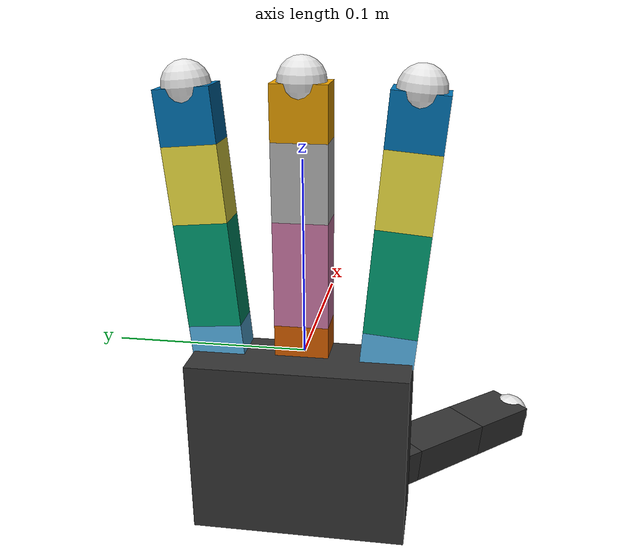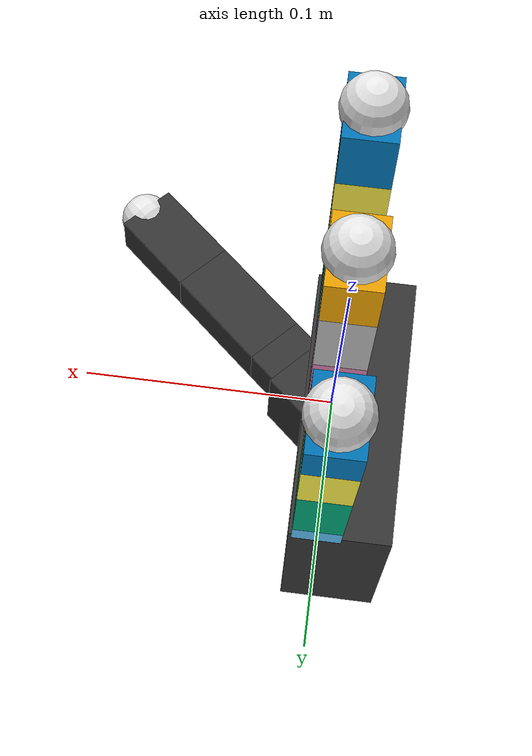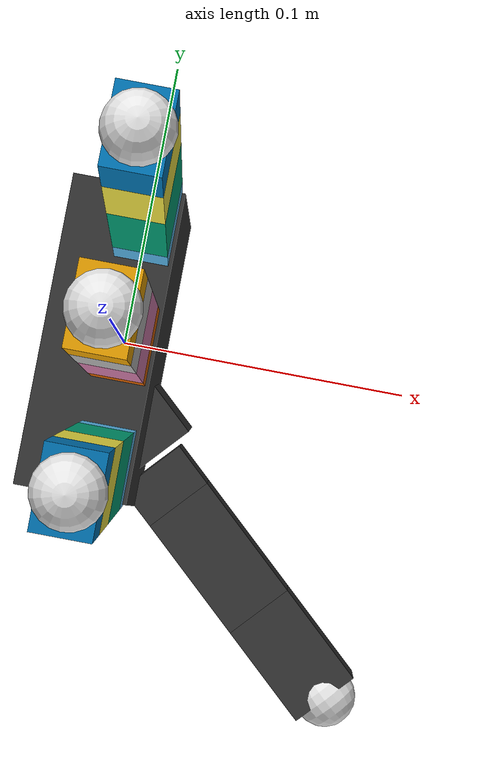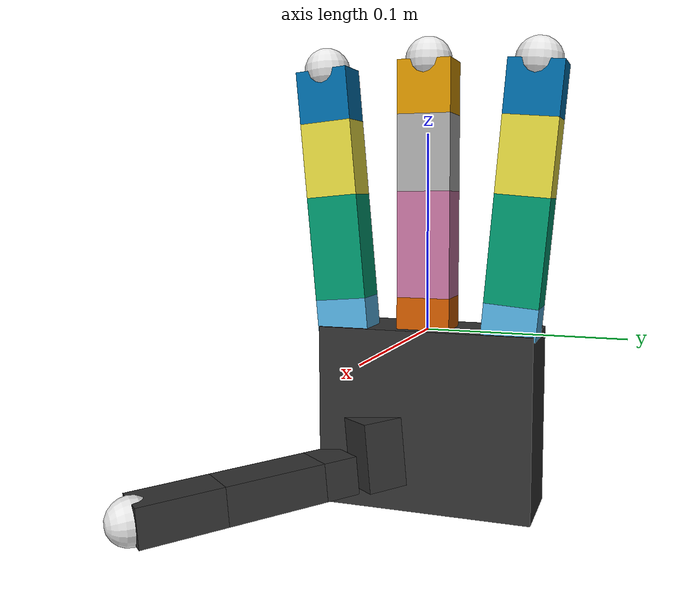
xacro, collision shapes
<?xml version="1.0"?>
<robot xmlns:xacro="http://wiki.ros.org/xacro" name="allegro_hand_left">
    <xacro:arg name="prefix" default=""/>

    <xacro:arg name="port" default="" />
    <xacro:arg name="hand_id" default="0" />
    <xacro:arg name="use_mock_hardware" default="false"/>

    <xacro:arg name="position_filtering" default="1.0" />
    <xacro:arg name="velocity_filtering" default="1.0" />

    <xacro:include filename="$(find allegro_hand_description)/urdf/allegro_hand_description_left.xacro"/>
    <xacro:include filename="$(find allegro_hand_description)/urdf/allegro_fingertip.xacro"/>

    <xacro:include filename="$(find allegro_hand_description)/ros2_control/allegro.ros2_control.xacro"/>

    <link name="world"></link>

    <xacro:allegro_hand_left prefix="$(arg prefix)" parent="world">
        <origin xyz="0 0 0" rpy="0 0 0"/>
    </xacro:allegro_hand_left>

    <xacro:allegro_finger_tip prefix="$(arg prefix)" finger_num="0"/>
    <xacro:allegro_finger_tip prefix="$(arg prefix)" finger_num="1"/>
    <xacro:allegro_finger_tip prefix="$(arg prefix)" finger_num="2"/>
    <xacro:allegro_thumb_tip prefix="$(arg prefix)" finger_num="3"/>

    <!-- ros2_control description -->
    <xacro:allegro_ros2_control
        name="allegro_hand_left"
        prefix="$(arg prefix)"
        port="$(arg port)"
        hand_id="$(arg hand_id)"
        use_mock_hardware="$(arg use_mock_hardware)"
        position_filtering="$(arg position_filtering)"
        velocity_filtering="$(arg velocity_filtering)"
        />

</robot>

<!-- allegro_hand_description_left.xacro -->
<robot xmlns:xacro="http://www.ros.org/wiki/xacro" name="allegro_hand_left">
    <xacro:include filename="allegro_common.xacro" />

    <!-- THUMB MACRO -->
    <xacro:macro name="thumb_left"
                 params="prefix finger_num offset_origin_x offset_origin_y offset_origin_z finger_angle_r finger_angle_p finger_angle_y">

        <!-- [LINK 12] -->
        <link name="${prefix}link_${finger_num*4+0}">
            <visual>
                <geometry>
                    <mesh filename="package://allegro_hand_description/meshes/link_12_0_left.STL"/>
                </geometry>
                <material name="black">
                    <color rgba=".2 .2 .2 1"/>
                </material>
                <origin rpy="${180*DEG2RAD} 0 0" xyz="0 0 0"/>
            </visual>

            <collision>
                <geometry>
                    <box size="${link0_t_x} ${link0_t_y} ${link0_t_z}"/>
                </geometry>
                <origin rpy="0 0 0" xyz="${-0.0358/2+0.0} ${-.018/2} ${.029/2}"/>
            </collision>

            <inertial>
              <mass value="0.0176" />
              <origin xyz="0 0 0" rpy="0 0 0"/>
              <inertia ixx="1.89273333333e-4" ixy="0" ixz="0"
                       iyy="1.43008213333e-4" iyz="0"
                       izz="1.89273333333e-4" />
            </inertial>
        </link>

        <joint name="${prefix}joint_${finger_num*4+0}" type="revolute">
            <axis xyz="+1 0 0"/>
            <limit effort="${torque_limit}" velocity="${velocity_limit}"
                   lower="${limit_0_t_low-joint_safety_margin}"
                   upper="${limit_0_t_up-joint_safety_margin}"/>
            <parent link="${prefix}palm_link"/>
            <child link="${prefix}link_${finger_num*4+0}"/>
            <origin rpy="${finger_angle_r} ${finger_angle_p} ${finger_angle_y}"
                    xyz="${offset_origin_x} ${offset_origin_y} ${offset_origin_z}"/>
            <dynamics damping="3" friction="10"/>
        </joint>

        <!-- [LINK 13] -->
        <link name="${prefix}link_${finger_num*4+1}">
            <visual>
                <geometry>
                    <mesh filename="package://allegro_hand_description/meshes/link_13_0.STL"/>
                </geometry>
                <material name="black">
                    <color rgba=".2 .2 .2 1"/>
                </material>
            </visual>

            <collision>
                <geometry>
                    <box size="${links_x} ${links_y} ${link1_t_z}"/>
                </geometry>
                <origin rpy="0 0 0" xyz="0 0 ${link1_t_z/2}"/>
            </collision>

            <inertial>
              <mass value="0.0119" />
              <origin xyz="0 0 0" rpy="0 0 0"/>
              <inertia ixx="4.24250866667e-4" ixy="0" ixz="0"
                       iyy="4.52362633333e-4" iyz="0"
                       izz="4.24250866667e-4" />
            </inertial>
        </link>

        <joint name="${prefix}joint_${finger_num*4+1}" type="revolute">
            <axis xyz="0 0 -1"/>
            <limit effort="${torque_limit}" velocity="${velocity_limit}"
                   lower="${limit_1_t_low+joint_safety_margin}"
                   upper="${limit_1_t_up-joint_safety_margin}"/>
            <parent link="${prefix}link_${finger_num*4+0}"/>
            <child link="${prefix}link_${finger_num*4+1}"/>
            <origin xyz="-0.027 -0.005 0.0399"/>
            <dynamics damping="3" friction="5"/>
        </joint>

        <!-- [LINK 14] -->
        <link name="${prefix}link_${finger_num*4+2}">
            <visual>
                <geometry>
                    <mesh filename="package://allegro_hand_description/meshes/link_14_0.STL"/>
                </geometry>
                <material name="black">
                </material>
            </visual>

            <collision>
                <geometry>
                    <box size="${links_x} ${links_y} ${link2_t_z}"/>
                </geometry>
                <origin rpy="0 0 0" xyz="0 0 ${link2_t_z/2}"/>
            </collision>

            <inertial>
              <mass value="0.038" />
              <origin xyz="0 0 0" rpy="0 0 0"/>
              <inertia ixx="4.30439933333e-4" ixy="0" ixz="0"
                       iyy="1.44451933333e-4" iyz="0"
                       izz="4.30439933333e-4" />
            </inertial>
        </link>

        <joint name="${prefix}joint_${finger_num*4+2}" type="revolute">
            <axis xyz="0 1 0"/>
            <limit effort="${torque_limit}" velocity="${velocity_limit}"
                   lower="${limit_2_t_low+joint_safety_margin}"
                   upper="${limit_2_t_up-joint_safety_margin}"/>
            <parent link="${prefix}link_${finger_num*4+1}"/>
            <child link="${prefix}link_${finger_num*4+2}"/>
            <origin xyz="0 0 ${link1_t_z}"/>
            <dynamics damping="3" friction="10"/>
        </joint>

        <!-- [LINK 15] -->
        <link name="${prefix}link_${finger_num*4+3}">
            <visual>
                <geometry>
                    <mesh filename="package://allegro_hand_description/meshes/link_15_0.STL"/>
                </geometry>
                <material name="black">
                </material>
            </visual>

            <collision>
                <geometry>
                    <box size="${links_x} ${links_y} ${link3_t_z-fingerTip_r}"/>
                </geometry>
                <origin rpy="0 0 0" xyz="0 0 ${(link3_t_z-fingerTip_r)/2}"/>
            </collision>

            <inertial>
              <mass value="0.0388" />
              <origin xyz="0 0 0" rpy="0 0 0"/>
              <inertia ixx="3.29223173333e-4" ixy="0" ixz="0"
                       iyy="1.47493026667e-4" iyz="0"
                       izz="3.29223173333e-4" />
            </inertial>
        </link>

        <joint name="${prefix}joint_${finger_num*4+3}" type="revolute">
            <axis xyz="0 1 0"/>
            <limit effort="${torque_limit}" velocity="${velocity_limit}"
                   lower="${limit_3_t_low+joint_safety_margin}"
                   upper="${limit_3_t_up-joint_safety_margin}"/>
            <parent link="${prefix}link_${finger_num*4+2}"/>
            <child link="${prefix}link_${finger_num*4+3}"/>
            <origin xyz="0 0 ${link2_t_z}"/>
            <dynamics damping="3" friction="12"/>
        </joint>

    </xacro:macro>
    <!-- END THUMB MACRO -->

    <!-- PALM MACRO-->
    <xacro:macro name="palm_left" params="prefix">
        <link name="${prefix}palm_link">
            <visual>
                <geometry>
                    <mesh filename="package://allegro_hand_description/meshes/base_link_left.STL"/>
                </geometry>
                <origin rpy="${-90*DEG2RAD} 0 0" xyz="0 0 0 "/>
                <material name="black">
                    <color rgba="0.2 0.2 0.2 1"/>
                </material>
            </visual>

            <collision>
                <origin rpy="0 0 0" xyz="-0.009300 0 -${palm_link_z/2}"/>
                <geometry>
                    <box size="0.0408 0.1130 ${palm_link_z}"/>
                </geometry>
            </collision>
            <inertial>
            <origin xyz="0 0 ${palm_link_z/2}" rpy="0 0 0"/>
            <mass value="0.4154"/>
            <inertia
                ixx="1e-4" ixy="0.0" ixz="0.0"
                iyy="1e-4" iyz="0.0"
                izz="1e-4"/>
            </inertial>
        </link>
    </xacro:macro>

    <!-- LEFT HAND MACRO -->
    <!-- FINGERS -->
    <!-- RIGHT HAND due to which finger is number 0 -->
    <!-- for LEFT HAND switch the sign of the **offset_origin_y** and **finger_angle_r** parameters-->
    <xacro:macro name="allegro_hand_left" params="prefix parent *origin">
        <xacro:finger
            prefix="${prefix}"
            finger_num="0"
            offset_origin_x="${offset_origin_x_const}"
            offset_origin_y="-${offset_origin_y_const}"
            offset_origin_z="${offset_origin_z_const}"
            finger_angle_r="${5.0*DEG2RAD}"
            />
        <xacro:finger
            prefix="${prefix}"
            finger_num="1"
            offset_origin_x="${offset_origin_x_const}"
            offset_origin_y="0"
            offset_origin_z="${offset_origin_z_mid_const}"
            finger_angle_r="0.0"
            />
        <xacro:finger
            prefix="${prefix}"
            finger_num="2"
            offset_origin_x="${offset_origin_x_const}"
            offset_origin_y="${offset_origin_y_const}"
            offset_origin_z="${offset_origin_z_const}"
            finger_angle_r="-${5.0*DEG2RAD}"
            />
        <!-- THUMB -->
        <xacro:thumb_left
            prefix="${prefix}"
            finger_num="3"
            offset_origin_x="-0.0182"
            offset_origin_y="-0.019333"
            offset_origin_z="-0.045987"
            finger_angle_r="0"
            finger_angle_p="-${95*DEG2RAD}"
            finger_angle_y="${90*DEG2RAD}"
            />
        <xacro:palm_left prefix="${prefix}"/>

        <joint name="${prefix}palm_attach_joint" type="fixed">
            <parent link="${parent}"/>
            <child link="${prefix}palm_link"/>
            <xacro:insert_block name="origin"/>
            <axis xyz="0 0 1"/>
        </joint>
    </xacro:macro>
</robot>

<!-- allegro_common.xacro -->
<robot xmlns:xacro="http://www.ros.org/wiki/xacro" name="allegro_hand_left">

    <xacro:arg name="torque_limit" default="1.0" />
    <xacro:arg name="velocity_limit" default="5.0" />

    <xacro:property name="DEG2RAD" value="0.01745329251"/>

    <!-- ======================== BASE PARAMS ========================= -->
    <xacro:property name="palm_link_z" value="0.095"/>

    <!-- ======================== FINGER PARAMS ======================== -->
    <xacro:property name="links_x" value="0.0196"/>
    <xacro:property name="links_y" value="0.0275"/>
    <xacro:property name="link0_z" value="0.0164"/>
    <xacro:property name="link1_z" value="0.0540"/>
    <xacro:property name="link2_z" value="0.0384"/>

    <!-- full height from joint to tip. when used,
        the radius of the finger tip sphere will be subtracted
        and one fixed link will be added for the tip. -->
    <xacro:property name="link3_z" value="0.0387"/>
    <xacro:property name="fingerTip_r" value="0.0120"/>
    <xacro:property name="offset_origin_x_const" value="0"/>
    <xacro:property name="offset_origin_y_const" value="0.0435"/>
    <xacro:property name="offset_origin_z_const" value="-0.001542"/>
    <xacro:property name="offset_origin_z_mid_const" value="0.0007"/>

    <!-- ========================= THUMB PARAMS ========================= -->
    <xacro:property name="link0_t_x" value="0.0358"/>
    <xacro:property name="link0_t_y" value="0.0340"/>
    <xacro:property name="link0_t_z" value="0.0455"/>
    <xacro:property name="link1_t_z" value="0.0177"/>
    <xacro:property name="link2_t_z" value="0.0514"/>
    <xacro:property name="link3_t_z" value="0.0543"/>

    <!-- ========================= LIMITS ========================= -->
    <xacro:property name="joint_safety_margin" value="0.1"/>
    <xacro:property name="limit_0_up" value="0.57"/>
    <xacro:property name="limit_0_low" value="-0.57"/>
    <xacro:property name="limit_1_up" value="1.71"/>
    <xacro:property name="limit_1_low" value="-0.296"/>
    <xacro:property name="limit_2_up" value="1.809"/>
    <xacro:property name="limit_2_low" value="-0.274"/>
    <xacro:property name="limit_3_up" value="1.718"/>
    <xacro:property name="limit_3_low" value=" -0.327"/>
    <xacro:property name="limit_0_t_up" value="1.496"/>
    <xacro:property name="limit_0_t_low" value="0.363"/>
    <xacro:property name="limit_1_t_up" value="1.263"/>
    <xacro:property name="limit_1_t_low" value="-0.205"/>
    <xacro:property name="limit_2_t_up" value="1.744"/>
    <xacro:property name="limit_2_t_low" value="-0.289"/>
    <xacro:property name="limit_3_t_up" value="1.819"/>
    <xacro:property name="limit_3_t_low" value="-0.262"/>
    <xacro:property name="torque_limit" value="$(arg torque_limit)"/>
    <xacro:property name="velocity_limit" value="$(arg velocity_limit)"/>

    <!-- THREE FINGER MACRO -->
    <xacro:macro name="finger"
                 params="prefix finger_num offset_origin_x offset_origin_y offset_origin_z finger_angle_r">

        <!-- [LINK 0, 4, 8] -->
        <link name="${prefix}link_${finger_num*4+0}">
            <visual>
                <geometry>
                    <mesh filename="package://allegro_hand_description/meshes/link_0_0.STL"/>
                </geometry>
                <material name=""/>
            </visual>

            <collision>
                <geometry>
                    <box size="${links_x} ${links_y} ${link0_z}"/>
                </geometry>
                <origin rpy="0 0 0" xyz="0 0 ${link0_z/2}"/>
            </collision>

            <inertial>
              <mass value="0.0119" />
              <origin xyz="0 0 0" rpy="0 0 0"/>
              <inertia ixx="1.01666658333e-4" ixy="0.0" ixz="0.0"
                       iyy="1.47677333333e-4" iyz="0.0"
                       izz="1.01666658333e-4" />
            </inertial>
        </link>

        <joint name="${prefix}joint_${finger_num*4+0}" type="revolute">
            <axis xyz="0 0 1"/>
            <limit effort="${torque_limit}" velocity="${velocity_limit}"
                   lower="${limit_0_low+joint_safety_margin}"
                   upper="${limit_0_up-joint_safety_margin}"/>
            <parent link="${prefix}palm_link"/>
            <child link="${prefix}link_${finger_num*4+0}"/>
            <origin rpy="${finger_angle_r} 0 0"
                    xyz="${offset_origin_x} ${offset_origin_y} ${offset_origin_z}"/>
            <dynamics damping="3" friction="10"/>
        </joint>

        <!-- [LINK 1, 5, 9] -->
        <link name="${prefix}link_${finger_num*4+1}">
            <visual>
                <geometry>
                    <mesh filename="package://allegro_hand_description/meshes/link_1_0.STL"/>
                </geometry>
                <material name=""/>
            </visual>

            <collision>
                <geometry>
                    <box size="${links_x} ${links_y} ${link1_z}"/>
                </geometry>
                <origin rpy="0 0 0" xyz="0 0 ${link1_z/2}"/>
            </collision>
            <inertial>
              <mass value="0.065" />
              <origin xyz="0 0 0" rpy="0 0 0"/>
              <inertia ixx="7.95654166667e-4" ixy="0" ixz="0"
                       iyy="2.47088833333e-4" iyz="0"
                       izz="7.95654166667e-4" />
            </inertial>
        </link>

        <joint name="${prefix}joint_${finger_num*4+1}" type="revolute">
            <limit effort="${torque_limit}" velocity="${velocity_limit}"
                   lower="${limit_1_low+joint_safety_margin}"
                   upper="${limit_1_up-joint_safety_margin}"/>
            <axis xyz="0 1 0"/>
            <parent link="${prefix}link_${finger_num*4+0}"/>
            <child link="${prefix}link_${finger_num*4+1}"/>
            <origin xyz="0 0 ${link0_z}"/>
            <dynamics damping="3" friction="5"/>
        </joint>

        <!-- [LINK 2, 6, 10]-->
        <link name="${prefix}link_${finger_num*4+2}">
            <visual>
                <geometry>
                    <mesh filename="package://allegro_hand_description/meshes/link_2_0.STL"/>
                </geometry>
                <material name=""/>
            </visual>

            <collision>
                <geometry>
                    <box size="${links_x} ${links_y} ${link2_z}"/>
                </geometry>
                <origin rpy="0 0 0" xyz="0 0 ${link2_z/2}"/>
            </collision>

            <inertial>
              <mass value="0.0355" />
              <origin xyz="0 0 0" rpy="0 0 0"/>
              <inertia ixx="2.63979183333e-4" ixy="0" ixz="0"
                       iyy="1.34948516667e-4" iyz="0"
                       izz="2.63979183333e-4" />
            </inertial>
        </link>

        <joint name="${prefix}joint_${finger_num*4+2}" type="revolute">
            <axis xyz="0 1 0"/>
            <limit effort="${torque_limit}" velocity="${velocity_limit}"
                   lower="${limit_2_low+joint_safety_margin}"
                   upper="${limit_2_up-joint_safety_margin}"/>
            <parent link="${prefix}link_${finger_num*4+1}"/>
            <child link="${prefix}link_${finger_num*4+2}"/>
            <origin xyz="0 0 ${link1_z}"/>
            <dynamics damping="8" friction="10"/>
        </joint>

        <!-- [LINK 3, 7, 11] -->
        <link name="${prefix}link_${finger_num*4+3}">
            <visual>
                <geometry>
                    <mesh filename="package://allegro_hand_description/meshes/link_3_0.STL"/>
                </geometry>
                <material name=""/>
            </visual>

            <collision>
                <geometry>
                    <box size="${links_x} ${links_y} ${link3_z-fingerTip_r}"/>
                </geometry>
                <origin rpy="0 0 0" xyz="0 0 ${(link3_z-fingerTip_r)/2}"/>
            </collision>

            <inertial>
              <mass value="0.0096" />
              <origin xyz="0 0 0" rpy="0 0 0"/>
              <inertia ixx="4.701248e-4" ixy="0" ixz="0"
                       iyy="3.649312e-4" iyz="0"
                       izz="4.701248e-4" />
            </inertial>
        </link>

        <joint name="${prefix}joint_${finger_num*4+3}" type="revolute">
            <axis xyz="0 1 0"/>
            <limit effort="${torque_limit}" velocity="${velocity_limit}"
                   lower="${limit_3_low+joint_safety_margin}"
                   upper="${limit_3_up-joint_safety_margin}"/>
            <parent link="${prefix}link_${finger_num*4+2}"/>
            <child link="${prefix}link_${finger_num*4+3}"/>
            <origin xyz="0 0 ${link2_z}"/>
            <dynamics damping="10" friction="12"/>
        </joint>

    </xacro:macro>
    <!-- [[END]] THREE FINGER MACRO -->
</robot>

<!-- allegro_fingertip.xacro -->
<robot xmlns:xacro="http://wiki.ros.org/xacro">
    <xacro:include filename="allegro_common.xacro" />

    <xacro:macro name="allegro_thumb_tip" params="prefix finger_num">
        <link name="${prefix}link_${finger_num*4+3}_tip">
            <visual>
                <geometry>
                    <mesh filename="package://allegro_hand_description/meshes/link_15_0_tip.STL"/>
                </geometry>

                <material name="white">
                    <color rgba=".9 .9 .9 1"/>
                </material>
            </visual>

            <collision>
                <geometry>
                    <sphere radius="${fingerTip_r}"/>
                </geometry>
                <origin rpy="0 0 0" xyz="0 0 0"/>
            </collision>

            <inertial>
              <mass value="0.0168" />
              <origin xyz="0 0 0" rpy="0 0 0"/>
              <inertia ixx="9.68e-4" ixy="0" ixz="0"
                       iyy="9.68e-4" iyz="0"
                       izz="9.68e-4" />
            </inertial>
        </link>

        <joint name="${prefix}joint_${finger_num*4+3}_tip" type="fixed">
            <parent link="${prefix}link_${finger_num*4+3}"/>
            <child link="${prefix}link_${finger_num*4+3}_tip"/>
            <origin rpy="0 0 0" xyz="0 0 ${link3_t_z-fingerTip_r}"/>
        </joint>
    </xacro:macro>

    <xacro:macro name="allegro_finger_tip" params="prefix finger_num">
        <link name="${prefix}link_${finger_num*4+3}_tip">
            <visual>
                <geometry>
                    <mesh filename="package://allegro_hand_description/meshes/link_3_0_tip.STL"/>
                </geometry>
                <material name="white">
                    <color rgba=".9 .9 .9 1"/>
                </material>
            </visual>

            <collision>
                <geometry>
                    <sphere radius="${fingerTip_r}"/>
                </geometry>
            </collision>

            <inertial>
              <mass value="0.0168" />
              <origin xyz="0 0 0" rpy="0 0 0"/>
              <inertia ixx="9.68e-4" ixy="0" ixz="0"
                       iyy="9.68e-4" iyz="0"
                       izz="9.68e-4" />
            </inertial>
        </link>

        <joint name="${prefix}joint_${finger_num*4+3}_tip" type="fixed">
            <parent link="${prefix}link_${finger_num*4+3}"/>
            <child link="${prefix}link_${finger_num*4+3}_tip"/>
            <origin rpy="0 0 0" xyz="0 0 ${link3_z-fingerTip_r}"/>
        </joint>
    </xacro:macro>

</robot>
